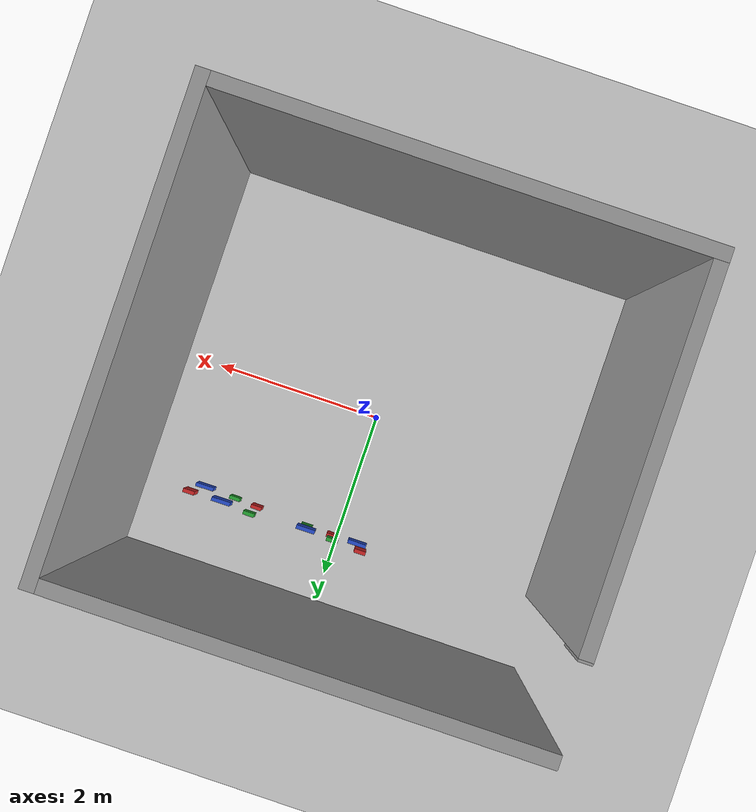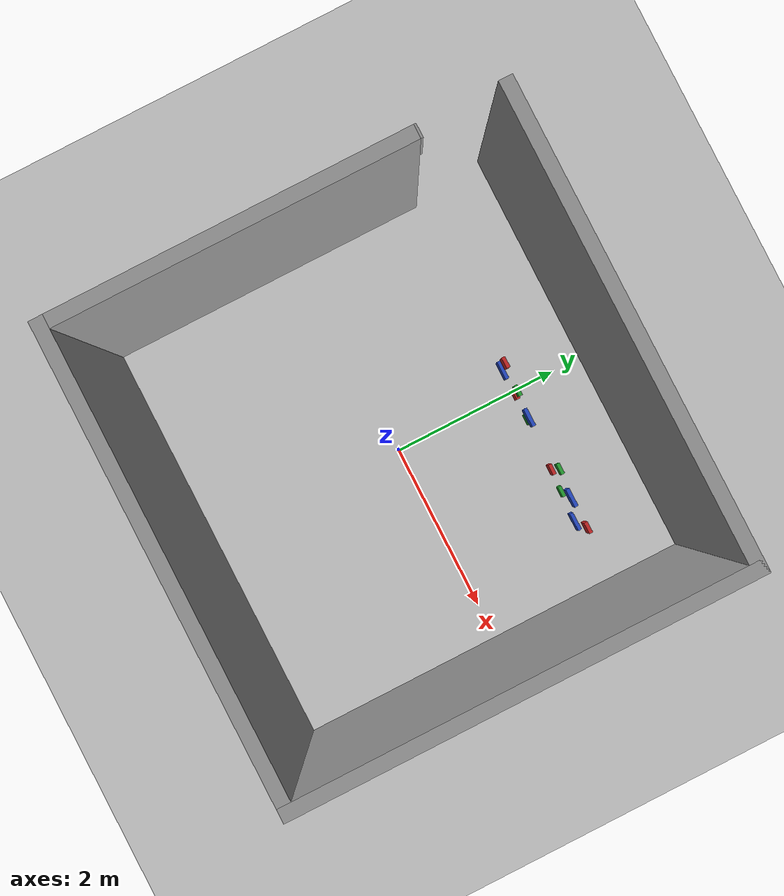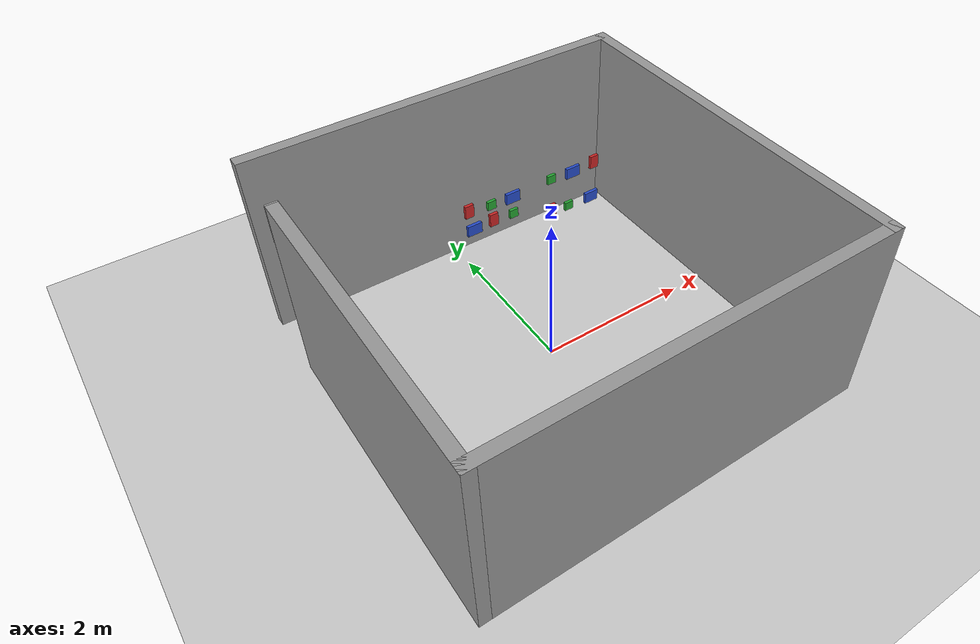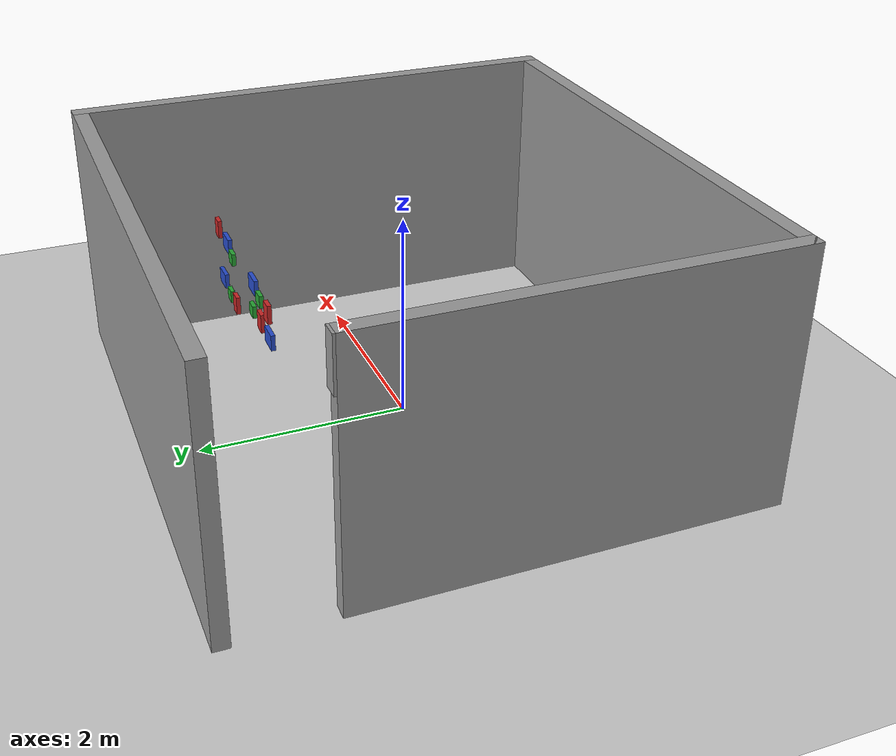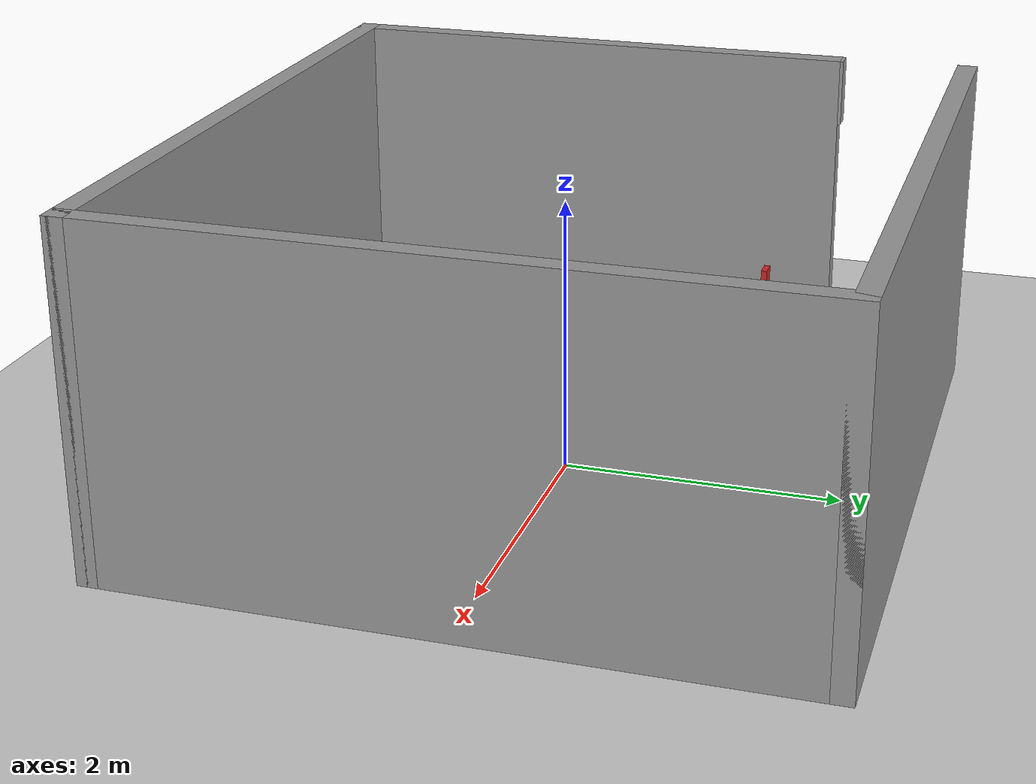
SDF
<sdf version="1.7">
 <world name="default">
  <light name="sun" type="directional">
   <pose>0 0 10 0 -0 0</pose>
   <diffuse>0.8 0.8 0.8 1</diffuse>
   <specular>0.2 0.2 0.2 1</specular>
   <attenuation>
    <range>1000</range>
    <constant>0.9</constant>
    <linear>0.01</linear>
    <quadratic>0.001</quadratic>
   </attenuation>
   <direction>-0.5 0.1 -0.9</direction>
   <spot><inner_angle>0</inner_angle><outer_angle>0</outer_angle><falloff>0</falloff></spot>
  </light>
  <model name="ground_plane">
   <static>1</static>
   <link name="link">
    <collision name="collision">
     <geometry><plane><normal>0 0 1</normal><size>100 100</size></plane></geometry>
     <surface>
      <contact><collide_bitmask>65535</collide_bitmask></contact>
      <friction><ode><mu>100</mu><mu2>50</mu2></ode></friction>
     </surface>
    </collision>
    <visual name="visual">
     <cast_shadows>0</cast_shadows>
     <geometry><plane><normal>0 0 1</normal><size>100 100</size></plane></geometry>
     <material>
      <script><uri>file://media/materials/scripts/gazebo.material</uri><name>Gazebo/Grey</name></script>
     </material>
    </visual>
   </link>
  </model>
  <gravity>0 0 -9.8</gravity>
  <magnetic_field>6e-06 2.3e-05 -4.2e-05</magnetic_field>
  <atmosphere type="adiabatic"/>
  <physics type="ode">
   <max_step_size>0.001</max_step_size>
   <real_time_factor>1</real_time_factor>
   <real_time_update_rate>1000</real_time_update_rate>
  </physics>
  <scene><ambient>0.4 0.4 0.4 1</ambient><background>0.7 0.7 0.7 1</background><shadows>1</shadows></scene>
  <spherical_coordinates>
   <surface_model>EARTH_WGS84</surface_model>
   <latitude_deg>0</latitude_deg>
   <longitude_deg>0</longitude_deg>
   <elevation>0</elevation>
   <heading_deg>0</heading_deg>
  </spherical_coordinates>
  <model name="box_red">
   <link name="link_1">
    <inertial>
     <mass>0.03</mass>
     <inertia><ixx>0.0005</ixx><ixy>0</ixy><ixz>0</ixz><iyy>0.0005</iyy><iyz>0</iyz><izz>0.0005</izz></inertia>
    </inertial>
    <visual name="visual">
     <geometry><box><size>0.04 0.12 0.18</size></box></geometry>
     <material>
      <lighting>1</lighting>
      <script><uri>file://media/materials/scripts/gazebo.material</uri><name>Gazebo/Red</name></script>
      <shader type="pixel"/>
     </material>
    </visual>
    <collision name="collision">
     <geometry><box><size>0.04 0.12 0.18</size></box></geometry>
     <surface>
      <friction>
       <ode><mu>1</mu><mu2>1</mu2><fdir1>0 0 0</fdir1><slip1>0</slip1><slip2>0</slip2></ode>
       <torsional>
        <coefficient>1</coefficient>
        <patch_radius>0</patch_radius>
        <surface_radius>0</surface_radius>
        <use_patch_radius>1</use_patch_radius>
        <ode><slip>0</slip></ode>
       </torsional>
      </friction>
      <bounce><restitution_coefficient>0</restitution_coefficient><threshold>1e+06</threshold></bounce>
      <contact>
       <collide_without_contact>0</collide_without_contact>
       <collide_without_contact_bitmask>1</collide_without_contact_bitmask>
       <collide_bitmask>1</collide_bitmask>
       <ode>
        <soft_cfm>0</soft_cfm>
        <soft_erp>0.2</soft_erp>
        <kp>1e+13</kp>
        <kd>1</kd>
        <max_vel>0.01</max_vel>
        <min_depth>0</min_depth>
       </ode>
       <bullet>
        <split_impulse>1</split_impulse>
        <split_impulse_penetration_threshold>-0.01</split_impulse_penetration_threshold>
        <soft_cfm>0</soft_cfm>
        <soft_erp>0.2</soft_erp>
        <kp>1e+13</kp>
        <kd>1</kd>
       </bullet>
      </contact>
     </surface>
    </collision>
   </link>
   <static>0</static>
   <pose>-0.278957 1.35566 1.46998 3.1e-05 -0 -1.56352</pose>
  </model>
  <model name="box_green">
   <link name="link_1">
    <inertial>
     <mass>0.03</mass>
     <inertia><ixx>0.0005</ixx><ixy>0</ixy><ixz>0</ixz><iyy>0.0005</iyy><iyz>0</iyz><izz>0.0005</izz></inertia>
    </inertial>
    <visual name="visual">
     <geometry><box><size>0.04 0.12 0.12</size></box></geometry>
     <material>
      <lighting>1</lighting>
      <script><uri>file://media/materials/scripts/gazebo.material</uri><name>Gazebo/Green</name></script>
      <shader type="pixel"/>
     </material>
    </visual>
    <collision name="collision">
     <geometry><box><size>0.04 0.12 0.12</size></box></geometry>
     <surface>
      <friction>
       <ode><mu>1</mu><mu2>1</mu2><fdir1>0 0 0</fdir1><slip1>0</slip1><slip2>0</slip2></ode>
       <torsional>
        <coefficient>1</coefficient>
        <patch_radius>0</patch_radius>
        <surface_radius>0</surface_radius>
        <use_patch_radius>1</use_patch_radius>
        <ode><slip>0</slip></ode>
       </torsional>
      </friction>
      <bounce><restitution_coefficient>0</restitution_coefficient><threshold>1e+06</threshold></bounce>
      <contact>
       <collide_without_contact>0</collide_without_contact>
       <collide_without_contact_bitmask>1</collide_without_contact_bitmask>
       <collide_bitmask>1</collide_bitmask>
       <ode>
        <soft_cfm>0</soft_cfm>
        <soft_erp>0.2</soft_erp>
        <kp>1e+13</kp>
        <kd>1</kd>
        <max_vel>0.01</max_vel>
        <min_depth>0</min_depth>
       </ode>
       <bullet>
        <split_impulse>1</split_impulse>
        <split_impulse_penetration_threshold>-0.01</split_impulse_penetration_threshold>
        <soft_cfm>0</soft_cfm>
        <soft_erp>0.2</soft_erp>
        <kp>1e+13</kp>
        <kd>1</kd>
       </bullet>
      </contact>
     </surface>
    </collision>
   </link>
   <static>0</static>
   <pose>0.336829 1.33436 1.18 3.1e-05 -0 -1.57152</pose>
  </model>
  <model name="box_blue">
   <link name="link_1">
    <inertial>
     <mass>0.03</mass>
     <inertia><ixx>0.0005</ixx><ixy>0</ixy><ixz>0</ixz><iyy>0.0005</iyy><iyz>0</iyz><izz>0.0005</izz></inertia>
    </inertial>
    <visual name="visual">
     <geometry><box><size>0.04 0.2 0.15</size></box></geometry>
     <material>
      <lighting>1</lighting>
      <script><uri>file://media/materials/scripts/gazebo.material</uri><name>Gazebo/Blue</name></script>
      <shader type="pixel"/>
     </material>
    </visual>
    <collision name="collision">
     <geometry><box><size>0.04 0.2 0.15</size></box></geometry>
     <surface>
      <friction>
       <ode><mu>1</mu><mu2>1</mu2><fdir1>0 0 0</fdir1><slip1>0</slip1><slip2>0</slip2></ode>
       <torsional>
        <coefficient>1</coefficient>
        <patch_radius>0</patch_radius>
        <surface_radius>0</surface_radius>
        <use_patch_radius>1</use_patch_radius>
        <ode><slip>0</slip></ode>
       </torsional>
      </friction>
      <bounce><restitution_coefficient>0</restitution_coefficient><threshold>1e+06</threshold></bounce>
      <contact>
       <collide_without_contact>0</collide_without_contact>
       <collide_without_contact_bitmask>1</collide_without_contact_bitmask>
       <collide_bitmask>1</collide_bitmask>
       <ode>
        <soft_cfm>0</soft_cfm>
        <soft_erp>0.2</soft_erp>
        <kp>1e+13</kp>
        <kd>1</kd>
        <max_vel>0.01</max_vel>
        <min_depth>0</min_depth>
       </ode>
       <bullet>
        <split_impulse>1</split_impulse>
        <split_impulse_penetration_threshold>-0.01</split_impulse_penetration_threshold>
        <soft_cfm>0</soft_cfm>
        <soft_erp>0.2</soft_erp>
        <kp>1e+13</kp>
        <kd>1</kd>
       </bullet>
      </contact>
     </surface>
    </collision>
   </link>
   <static>0</static>
   <pose>-0.23336 1.33494 1.18582 7.2e-05 0.000111 -1.57073</pose>
  </model>
  <model name="box_blue_clone">
   <link name="link_1">
    <inertial>
     <mass>0.03</mass>
     <inertia><ixx>0.0005</ixx><ixy>0</ixy><ixz>0</ixz><iyy>0.0005</iyy><iyz>0</iyz><izz>0.0005</izz></inertia>
    </inertial>
    <visual name="visual">
     <geometry><box><size>0.04 0.2 0.15</size></box></geometry>
     <material>
      <lighting>1</lighting>
      <script><uri>file://media/materials/scripts/gazebo.material</uri><name>Gazebo/Blue</name></script>
      <shader type="pixel"/>
     </material>
    </visual>
    <collision name="collision">
     <geometry><box><size>0.04 0.2 0.15</size></box></geometry>
     <surface>
      <friction>
       <ode><mu>1</mu><mu2>1</mu2><fdir1>0 0 0</fdir1><slip1>0</slip1><slip2>0</slip2></ode>
       <torsional>
        <coefficient>1</coefficient>
        <patch_radius>0</patch_radius>
        <surface_radius>0</surface_radius>
        <use_patch_radius>1</use_patch_radius>
        <ode><slip>0</slip></ode>
       </torsional>
      </friction>
      <bounce><restitution_coefficient>0</restitution_coefficient><threshold>1e+06</threshold></bounce>
      <contact>
       <collide_without_contact>0</collide_without_contact>
       <collide_without_contact_bitmask>1</collide_without_contact_bitmask>
       <collide_bitmask>1</collide_bitmask>
       <ode>
        <soft_cfm>0</soft_cfm>
        <soft_erp>0.2</soft_erp>
        <kp>1e+13</kp>
        <kd>1</kd>
        <max_vel>0.01</max_vel>
        <min_depth>0</min_depth>
       </ode>
       <bullet>
        <split_impulse>1</split_impulse>
        <split_impulse_penetration_threshold>-0.01</split_impulse_penetration_threshold>
        <soft_cfm>0</soft_cfm>
        <soft_erp>0.2</soft_erp>
        <kp>1e+13</kp>
        <kd>1</kd>
       </bullet>
      </contact>
     </surface>
    </collision>
   </link>
   <static>0</static>
   <pose>0.324696 1.32073 1.44586 7.3e-05 0.000111 -1.56428</pose>
  </model>
  <model name="box_red_clone">
   <link name="link_1">
    <inertial>
     <mass>0.03</mass>
     <inertia><ixx>0.0005</ixx><ixy>0</ixy><ixz>0</ixz><iyy>0.0005</iyy><iyz>0</iyz><izz>0.0005</izz></inertia>
    </inertial>
    <visual name="visual">
     <geometry><box><size>0.04 0.12 0.18</size></box></geometry>
     <material>
      <lighting>1</lighting>
      <script><uri>file://media/materials/scripts/gazebo.material</uri><name>Gazebo/Red</name></script>
      <shader type="pixel"/>
     </material>
    </visual>
    <collision name="collision">
     <geometry><box><size>0.04 0.12 0.18</size></box></geometry>
     <surface>
      <friction>
       <ode><mu>1</mu><mu2>1</mu2><fdir1>0 0 0</fdir1><slip1>0</slip1><slip2>0</slip2></ode>
       <torsional>
        <coefficient>1</coefficient>
        <patch_radius>0</patch_radius>
        <surface_radius>0</surface_radius>
        <use_patch_radius>1</use_patch_radius>
        <ode><slip>0</slip></ode>
       </torsional>
      </friction>
      <bounce><restitution_coefficient>0</restitution_coefficient><threshold>1e+06</threshold></bounce>
      <contact>
       <collide_without_contact>0</collide_without_contact>
       <collide_without_contact_bitmask>1</collide_without_contact_bitmask>
       <collide_bitmask>1</collide_bitmask>
       <ode>
        <soft_cfm>0</soft_cfm>
        <soft_erp>0.2</soft_erp>
        <kp>1e+13</kp>
        <kd>1</kd>
        <max_vel>0.01</max_vel>
        <min_depth>0</min_depth>
       </ode>
       <bullet>
        <split_impulse>1</split_impulse>
        <split_impulse_penetration_threshold>-0.01</split_impulse_penetration_threshold>
        <soft_cfm>0</soft_cfm>
        <soft_erp>0.2</soft_erp>
        <kp>1e+13</kp>
        <kd>1</kd>
       </bullet>
      </contact>
     </surface>
    </collision>
   </link>
   <static>0</static>
   <pose>0.046092 1.33643 1.20999 3.1e-05 -0 -1.56914</pose>
  </model>
  <model name="box_green_clone">
   <link name="link_1">
    <inertial>
     <mass>0.03</mass>
     <inertia><ixx>0.0005</ixx><ixy>0</ixy><ixz>0</ixz><iyy>0.0005</iyy><iyz>0</iyz><izz>0.0005</izz></inertia>
    </inertial>
    <visual name="visual">
     <geometry><box><size>0.04 0.12 0.12</size></box></geometry>
     <material>
      <lighting>1</lighting>
      <script><uri>file://media/materials/scripts/gazebo.material</uri><name>Gazebo/Green</name></script>
      <shader type="pixel"/>
     </material>
    </visual>
    <collision name="collision">
     <geometry><box><size>0.04 0.12 0.12</size></box></geometry>
     <surface>
      <friction>
       <ode><mu>1</mu><mu2>1</mu2><fdir1>0 0 0</fdir1><slip1>0</slip1><slip2>0</slip2></ode>
       <torsional>
        <coefficient>1</coefficient>
        <patch_radius>0</patch_radius>
        <surface_radius>0</surface_radius>
        <use_patch_radius>1</use_patch_radius>
        <ode><slip>0</slip></ode>
       </torsional>
      </friction>
      <bounce><restitution_coefficient>0</restitution_coefficient><threshold>1e+06</threshold></bounce>
      <contact>
       <collide_without_contact>0</collide_without_contact>
       <collide_without_contact_bitmask>1</collide_without_contact_bitmask>
       <collide_bitmask>1</collide_bitmask>
       <ode>
        <soft_cfm>0</soft_cfm>
        <soft_erp>0.2</soft_erp>
        <kp>1e+13</kp>
        <kd>1</kd>
        <max_vel>0.01</max_vel>
        <min_depth>0</min_depth>
       </ode>
       <bullet>
        <split_impulse>1</split_impulse>
        <split_impulse_penetration_threshold>-0.01</split_impulse_penetration_threshold>
        <soft_cfm>0</soft_cfm>
        <soft_erp>0.2</soft_erp>
        <kp>1e+13</kp>
        <kd>1</kd>
       </bullet>
      </contact>
     </surface>
    </collision>
   </link>
   <static>0</static>
   <pose>0.029978 1.34474 1.44 -0 -0 -1.55859</pose>
  </model>
  <model name="Arena">
   <pose>0 0 0 0 0 -1.5707</pose>
   <link name="Wall_10">
    <collision name="Wall_10_Collision">
     <geometry><box><size>5 0.15 2.5</size></box></geometry>
     <pose>0 0 1.25 0 -0 0</pose>
    </collision>
    <visual name="Wall_10_Visual">
     <pose>0 0 1.25 0 -0 0</pose>
     <geometry><box><size>5 0.15 2.5</size></box></geometry>
     <material>
      <script><uri>file://media/materials/scripts/gazebo.material</uri><name>Gazebo/Grey</name></script>
      <ambient>1 1 1 1</ambient>
     </material>
     <meta><layer>0</layer></meta>
    </visual>
    <pose>0 2.5 0 0 -0 0</pose>
   </link>
   <link name="Wall_11">
    <collision name="Wall_11_Collision">
     <geometry><box><size>5.15 0.15 2.5</size></box></geometry>
     <pose>0 0 1.25 0 -0 0</pose>
    </collision>
    <visual name="Wall_11_Visual">
     <pose>0 0 1.25 0 -0 0</pose>
     <geometry><box><size>5.15 0.15 2.5</size></box></geometry>
     <material>
      <script><uri>file://media/materials/scripts/gazebo.material</uri><name>Gazebo/Grey</name></script>
      <ambient>1 1 1 1</ambient>
     </material>
     <meta><layer>0</layer></meta>
    </visual>
    <pose>2.425 0 0 0 -0 -1.5708</pose>
   </link>
   <link name="Wall_14">
    <pose>0.5 -2.5 0 0 -0 3.14159</pose>
    <visual name="Wall_14_Visual_0">
     <pose>-0.0125 0 1.25 0 -0 0</pose>
     <geometry><box><size>3.975 0.15 2.5</size></box></geometry>
     <material>
      <script><uri>file://media/materials/scripts/gazebo.material</uri><name>Gazebo/Grey</name></script>
      <ambient>1 1 1 1</ambient>
     </material>
     <meta><layer>0</layer></meta>
    </visual>
    <collision name="Wall_14_Collision_0">
     <geometry><box><size>3.975 0.15 2.5</size></box></geometry>
     <pose>-0.0125 0 1.25 0 -0 0</pose>
    </collision>
    <visual name="Wall_14_Visual_1">
     <pose>1.9875 0 2.25 0 -0 0</pose>
     <geometry><box><size>0.025 0.15 0.5</size></box></geometry>
     <material>
      <script><uri>file://media/materials/scripts/gazebo.material</uri><name>Gazebo/Grey</name></script>
      <ambient>1 1 1 1</ambient>
     </material>
     <meta><layer>0</layer></meta>
    </visual>
    <collision name="Wall_14_Collision_1">
     <geometry><box><size>0.025 0.15 0.5</size></box></geometry>
     <pose>1.9875 0 2.25 0 -0 0</pose>
    </collision>
   </link>
   <link name="Wall_8">
    <collision name="Wall_8_Collision">
     <geometry><box><size>5.15 0.15 2.5</size></box></geometry>
     <pose>0 0 1.25 0 -0 0</pose>
    </collision>
    <visual name="Wall_8_Visual">
     <pose>0 0 1.25 0 -0 0</pose>
     <geometry><box><size>5.15 0.15 2.5</size></box></geometry>
     <material>
      <script><uri>file://media/materials/scripts/gazebo.material</uri><name>Gazebo/Grey</name></script>
      <ambient>1 1 1 1</ambient>
     </material>
     <meta><layer>0</layer></meta>
    </visual>
    <pose>-2.425 0 0 0 -0 1.5708</pose>
   </link>
   <static>1</static>
  </model>
  <model name="box_blue_clone_0">
   <link name="link_1">
    <inertial>
     <mass>0.03</mass>
     <inertia><ixx>0.0005</ixx><ixy>0</ixy><ixz>0</ixz><iyy>0.0005</iyy><iyz>0</iyz><izz>0.0005</izz></inertia>
    </inertial>
    <visual name="visual">
     <geometry><box><size>0.04 0.2 0.15</size></box></geometry>
     <material>
      <lighting>1</lighting>
      <script><uri>file://media/materials/scripts/gazebo.material</uri><name>Gazebo/Blue</name></script>
      <shader type="pixel"/>
     </material>
    </visual>
    <collision name="collision">
     <geometry><box><size>0.04 0.2 0.15</size></box></geometry>
     <surface>
      <friction>
       <ode><mu>1</mu><mu2>1</mu2><fdir1>0 0 0</fdir1><slip1>0</slip1><slip2>0</slip2></ode>
       <torsional>
        <coefficient>1</coefficient>
        <patch_radius>0</patch_radius>
        <surface_radius>0</surface_radius>
        <use_patch_radius>1</use_patch_radius>
        <ode><slip>0</slip></ode>
       </torsional>
      </friction>
      <bounce><restitution_coefficient>0</restitution_coefficient><threshold>1e+06</threshold></bounce>
      <contact>
       <collide_without_contact>0</collide_without_contact>
       <collide_without_contact_bitmask>1</collide_without_contact_bitmask>
       <collide_bitmask>1</collide_bitmask>
       <ode>
        <soft_cfm>0</soft_cfm>
        <soft_erp>0.2</soft_erp>
        <kp>1e+13</kp>
        <kd>1</kd>
        <max_vel>0.01</max_vel>
        <min_depth>0</min_depth>
       </ode>
       <bullet>
        <split_impulse>1</split_impulse>
        <split_impulse_penetration_threshold>-0.01</split_impulse_penetration_threshold>
        <soft_cfm>0</soft_cfm>
        <soft_erp>0.2</soft_erp>
        <kp>1e+13</kp>
        <kd>1</kd>
       </bullet>
      </contact>
     </surface>
    </collision>
   </link>
   <static>0</static>
   <pose>1.54045 1.31638 0.934968 1.5e-05 -0 -1.55535</pose>
  </model>
  <model name="box_green_clone_0">
   <link name="link_1">
    <inertial>
     <mass>0.03</mass>
     <inertia><ixx>0.0005</ixx><ixy>0</ixy><ixz>0</ixz><iyy>0.0005</iyy><iyz>0</iyz><izz>0.0005</izz></inertia>
    </inertial>
    <visual name="visual">
     <geometry><box><size>0.04 0.12 0.12</size></box></geometry>
     <material>
      <lighting>1</lighting>
      <script><uri>file://media/materials/scripts/gazebo.material</uri><name>Gazebo/Green</name></script>
      <shader type="pixel"/>
     </material>
    </visual>
    <collision name="collision">
     <geometry><box><size>0.04 0.12 0.12</size></box></geometry>
     <surface>
      <friction>
       <ode><mu>1</mu><mu2>1</mu2><fdir1>0 0 0</fdir1><slip1>0</slip1><slip2>0</slip2></ode>
       <torsional>
        <coefficient>1</coefficient>
        <patch_radius>0</patch_radius>
        <surface_radius>0</surface_radius>
        <use_patch_radius>1</use_patch_radius>
        <ode><slip>0</slip></ode>
       </torsional>
      </friction>
      <bounce><restitution_coefficient>0</restitution_coefficient><threshold>1e+06</threshold></bounce>
      <contact>
       <collide_without_contact>0</collide_without_contact>
       <collide_without_contact_bitmask>1</collide_without_contact_bitmask>
       <collide_bitmask>1</collide_bitmask>
       <ode>
        <soft_cfm>0</soft_cfm>
        <soft_erp>0.2</soft_erp>
        <kp>1e+13</kp>
        <kd>1</kd>
        <max_vel>0.01</max_vel>
        <min_depth>0</min_depth>
       </ode>
       <bullet>
        <split_impulse>1</split_impulse>
        <split_impulse_penetration_threshold>-0.01</split_impulse_penetration_threshold>
        <soft_cfm>0</soft_cfm>
        <soft_erp>0.2</soft_erp>
        <kp>1e+13</kp>
        <kd>1</kd>
       </bullet>
      </contact>
     </surface>
    </collision>
   </link>
   <static>0</static>
   <pose>0.932047 1.36111 1.43999 3e-06 1.2e-05 -1.57072</pose>
  </model>
  <model name="box_red_clone_0">
   <link name="link_1">
    <inertial>
     <mass>0.03</mass>
     <inertia><ixx>0.0005</ixx><ixy>0</ixy><ixz>0</ixz><iyy>0.0005</iyy><iyz>0</iyz><izz>0.0005</izz></inertia>
    </inertial>
    <visual name="visual">
     <geometry><box><size>0.04 0.12 0.18</size></box></geometry>
     <material>
      <lighting>1</lighting>
      <script><uri>file://media/materials/scripts/gazebo.material</uri><name>Gazebo/Red</name></script>
      <shader type="pixel"/>
     </material>
    </visual>
    <collision name="collision">
     <geometry><box><size>0.04 0.12 0.18</size></box></geometry>
     <surface>
      <friction>
       <ode><mu>1</mu><mu2>1</mu2><fdir1>0 0 0</fdir1><slip1>0</slip1><slip2>0</slip2></ode>
       <torsional>
        <coefficient>1</coefficient>
        <patch_radius>0</patch_radius>
        <surface_radius>0</surface_radius>
        <use_patch_radius>1</use_patch_radius>
        <ode><slip>0</slip></ode>
       </torsional>
      </friction>
      <bounce><restitution_coefficient>0</restitution_coefficient><threshold>1e+06</threshold></bounce>
      <contact>
       <collide_without_contact>0</collide_without_contact>
       <collide_without_contact_bitmask>1</collide_without_contact_bitmask>
       <collide_bitmask>1</collide_bitmask>
       <ode>
        <soft_cfm>0</soft_cfm>
        <soft_erp>0.2</soft_erp>
        <kp>1e+13</kp>
        <kd>1</kd>
        <max_vel>0.01</max_vel>
        <min_depth>0</min_depth>
       </ode>
       <bullet>
        <split_impulse>1</split_impulse>
        <split_impulse_penetration_threshold>-0.01</split_impulse_penetration_threshold>
        <soft_cfm>0</soft_cfm>
        <soft_erp>0.2</soft_erp>
        <kp>1e+13</kp>
        <kd>1</kd>
       </bullet>
      </contact>
     </surface>
    </collision>
   </link>
   <static>0</static>
   <pose>0.931656 1.34699 0.949989 1.6e-05 -0 -1.57519</pose>
  </model>
  <model name="box_red_clone_1">
   <link name="link_1">
    <inertial>
     <mass>0.03</mass>
     <inertia><ixx>0.0005</ixx><ixy>0</ixy><ixz>0</ixz><iyy>0.0005</iyy><iyz>0</iyz><izz>0.0005</izz></inertia>
    </inertial>
    <visual name="visual">
     <geometry><box><size>0.04 0.12 0.18</size></box></geometry>
     <material>
      <lighting>1</lighting>
      <script><uri>file://media/materials/scripts/gazebo.material</uri><name>Gazebo/Red</name></script>
      <shader type="pixel"/>
     </material>
    </visual>
    <collision name="collision">
     <geometry><box><size>0.04 0.12 0.18</size></box></geometry>
     <surface>
      <friction>
       <ode><mu>1</mu><mu2>1</mu2><fdir1>0 0 0</fdir1><slip1>0</slip1><slip2>0</slip2></ode>
       <torsional>
        <coefficient>1</coefficient>
        <patch_radius>0</patch_radius>
        <surface_radius>0</surface_radius>
        <use_patch_radius>1</use_patch_radius>
        <ode><slip>0</slip></ode>
       </torsional>
      </friction>
      <bounce><restitution_coefficient>0</restitution_coefficient><threshold>1e+06</threshold></bounce>
      <contact>
       <collide_without_contact>0</collide_without_contact>
       <collide_without_contact_bitmask>1</collide_without_contact_bitmask>
       <collide_bitmask>1</collide_bitmask>
       <ode>
        <soft_cfm>0</soft_cfm>
        <soft_erp>0.2</soft_erp>
        <kp>1e+13</kp>
        <kd>1</kd>
        <max_vel>0.01</max_vel>
        <min_depth>0</min_depth>
       </ode>
       <bullet>
        <split_impulse>1</split_impulse>
        <split_impulse_penetration_threshold>-0.01</split_impulse_penetration_threshold>
        <soft_cfm>0</soft_cfm>
        <soft_erp>0.2</soft_erp>
        <kp>1e+13</kp>
        <kd>1</kd>
       </bullet>
      </contact>
     </surface>
    </collision>
   </link>
   <static>0</static>
   <pose>1.58048 1.33183 1.46995 1.5e-05 1e-06 -1.57104</pose>
  </model>
  <model name="box_green_clone_0_clone">
   <link name="link_1">
    <inertial>
     <mass>0.03</mass>
     <inertia><ixx>0.0005</ixx><ixy>0</ixy><ixz>0</ixz><iyy>0.0005</iyy><iyz>0</iyz><izz>0.0005</izz></inertia>
    </inertial>
    <visual name="visual">
     <geometry><box><size>0.04 0.12 0.12</size></box></geometry>
     <material>
      <lighting>1</lighting>
      <script><uri>file://media/materials/scripts/gazebo.material</uri><name>Gazebo/Green</name></script>
      <shader type="pixel"/>
     </material>
    </visual>
    <collision name="collision">
     <geometry><box><size>0.04 0.12 0.12</size></box></geometry>
     <surface>
      <friction>
       <ode><mu>1</mu><mu2>1</mu2><fdir1>0 0 0</fdir1><slip1>0</slip1><slip2>0</slip2></ode>
       <torsional>
        <coefficient>1</coefficient>
        <patch_radius>0</patch_radius>
        <surface_radius>0</surface_radius>
        <use_patch_radius>1</use_patch_radius>
        <ode><slip>0</slip></ode>
       </torsional>
      </friction>
      <bounce><restitution_coefficient>0</restitution_coefficient><threshold>1e+06</threshold></bounce>
      <contact>
       <collide_without_contact>0</collide_without_contact>
       <collide_without_contact_bitmask>1</collide_without_contact_bitmask>
       <collide_bitmask>1</collide_bitmask>
       <ode>
        <soft_cfm>0</soft_cfm>
        <soft_erp>0.2</soft_erp>
        <kp>1e+13</kp>
        <kd>1</kd>
        <max_vel>0.01</max_vel>
        <min_depth>0</min_depth>
       </ode>
       <bullet>
        <split_impulse>1</split_impulse>
        <split_impulse_penetration_threshold>-0.01</split_impulse_penetration_threshold>
        <soft_cfm>0</soft_cfm>
        <soft_erp>0.2</soft_erp>
        <kp>1e+13</kp>
        <kd>1</kd>
       </bullet>
      </contact>
     </surface>
    </collision>
   </link>
   <static>0</static>
   <pose>1.19144 1.33653 0.919536 1.7e-05 7e-06 -1.57033</pose>
  </model>
  <model name="box_blue_clone_0_clone">
   <link name="link_1">
    <inertial>
     <mass>0.03</mass>
     <inertia><ixx>0.0005</ixx><ixy>0</ixy><ixz>0</ixz><iyy>0.0005</iyy><iyz>0</iyz><izz>0.0005</izz></inertia>
    </inertial>
    <visual name="visual">
     <geometry><box><size>0.04 0.2 0.15</size></box></geometry>
     <material>
      <lighting>1</lighting>
      <script><uri>file://media/materials/scripts/gazebo.material</uri><name>Gazebo/Blue</name></script>
      <shader type="pixel"/>
     </material>
    </visual>
    <collision name="collision">
     <geometry><box><size>0.04 0.2 0.15</size></box></geometry>
     <surface>
      <friction>
       <ode><mu>1</mu><mu2>1</mu2><fdir1>0 0 0</fdir1><slip1>0</slip1><slip2>0</slip2></ode>
       <torsional>
        <coefficient>1</coefficient>
        <patch_radius>0</patch_radius>
        <surface_radius>0</surface_radius>
        <use_patch_radius>1</use_patch_radius>
        <ode><slip>0</slip></ode>
       </torsional>
      </friction>
      <bounce><restitution_coefficient>0</restitution_coefficient><threshold>1e+06</threshold></bounce>
      <contact>
       <collide_without_contact>0</collide_without_contact>
       <collide_without_contact_bitmask>1</collide_without_contact_bitmask>
       <collide_bitmask>1</collide_bitmask>
       <ode>
        <soft_cfm>0</soft_cfm>
        <soft_erp>0.2</soft_erp>
        <kp>1e+13</kp>
        <kd>1</kd>
        <max_vel>0.01</max_vel>
        <min_depth>0</min_depth>
       </ode>
       <bullet>
        <split_impulse>1</split_impulse>
        <split_impulse_penetration_threshold>-0.01</split_impulse_penetration_threshold>
        <soft_cfm>0</soft_cfm>
        <soft_erp>0.2</soft_erp>
        <kp>1e+13</kp>
        <kd>1</kd>
       </bullet>
      </contact>
     </surface>
    </collision>
   </link>
   <static>0</static>
   <pose>1.24316 1.32845 1.44716 2.3e-05 6.8e-05 -1.56375</pose>
  </model>
 </world>
</sdf>
